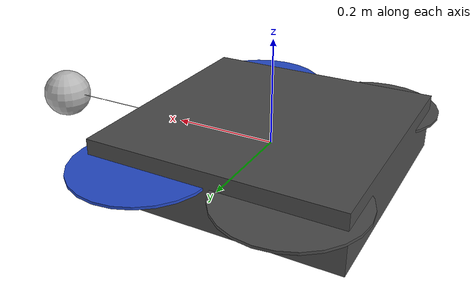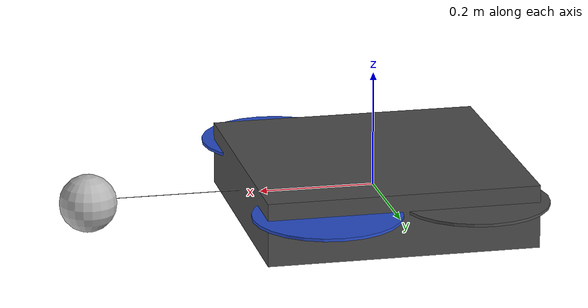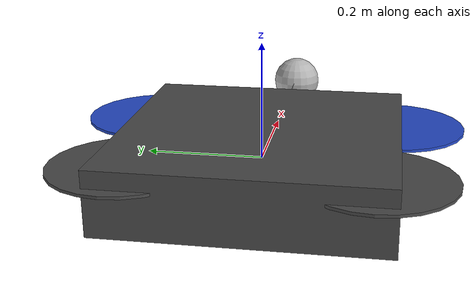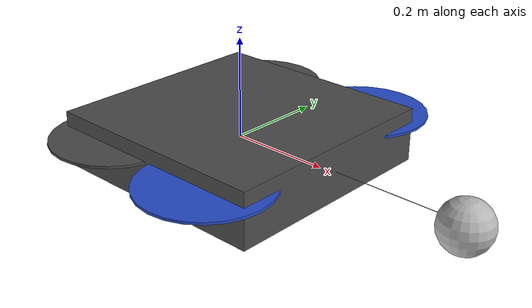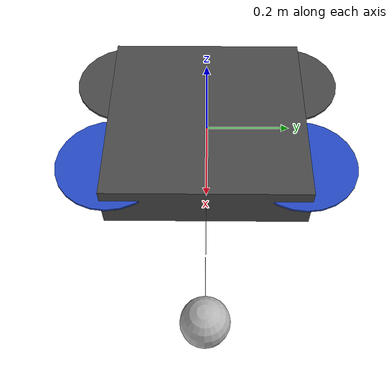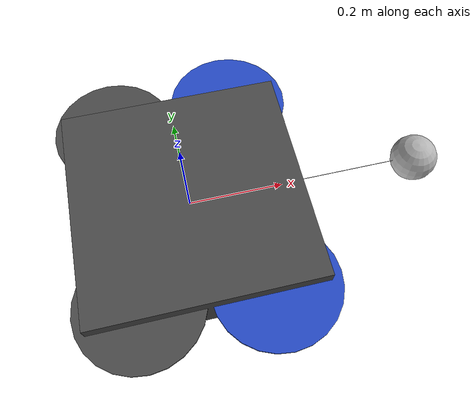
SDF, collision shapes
<?xml version="1.0" ?>
<sdf version='1.5'>
  <model name='iris_rplidar'>
        <static>false</static>
    <include>
      <uri>model://iris</uri>
    </include>

	<include>
	  <uri>model://payload</uri>
		<pose>0.25 0.0 0.0 0 0 0</pose>
   </include>
    <joint name="payload_link_drone_joint" type="revolute2">
      <parent>iris_rplidar::iris::base_link</parent>
      <child>iris_rplidar::payload::payload_link</child>
      <pose>-0.00 0.0 -0.25 0 0.0 0.0</pose>

      <axis>
        <xyz>1 0 0</xyz>
		<dynamics>
		<damping> 1.0 </damping>
		<spring_stiffness> 4.5 </spring_stiffness>
		</dynamics>
		<limit>
		   <lower>-0.01</lower>
		   <upper>0.01</upper>
		</limit>
      </axis>

      <axis2>
        <xyz>0 1 0</xyz>
		<dynamics>
		<damping> 1 </damping>
		<spring_stiffness> 0.45 </spring_stiffness>
		</dynamics>
      </axis2>

	 <physics>
	 <ode>
	 <provide_feedback>true</provide_feedback>
	 			<implicit_spring_damper>true</implicit_spring_damper>
	 </ode>
	 </physics>
	 <sensor name="force_torque" type="force_torque">
      <update_rate>200</update_rate>
	  <always_on>true</always_on>
     </sensor>

    </joint>
		<plugin name="ft_sensor" filename="libgazebo_ros_ft_sensor.so">
			  <always_on>true</always_on>
            <updateRate>200.0</updateRate>
            <topicName>/ft_sensor</topicName>
		            <jointName>payload_link_drone_joint</jointName>
        </plugin>

  </model>
</sdf>
<!-- vim: set noet fenc=utf-8 ff=unix sts=0 sw=4 ts=4 : -->

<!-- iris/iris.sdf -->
<sdf version='1.6'>
  <model name='iris'>
    <link name='base_link'>
      <pose frame=''>0 0 0 0 -0 0</pose>
      <inertial>
        <pose frame=''>0 0 0 0 -0 0</pose>
        <mass>1.5</mass>
        <inertia>
          <ixx>0.0347563</ixx>
          <ixy>0</ixy>
          <ixz>0</ixz>
          <iyy>0.0458929</iyy>
          <iyz>0</iyz>
          <izz>0.0977</izz>
        </inertia>
      </inertial>
      <collision name='base_link_inertia_collision'>
        <pose frame=''>0 0 0 0 -0 0</pose>
        <geometry>
          <box>
            <size>0.47 0.47 0.11</size>
          </box>
        </geometry>
        <surface>
          <contact>
            <ode>
              <min_depth>0.001</min_depth>
              <max_vel>0</max_vel>
            </ode>
          </contact>
          <friction>
            <ode/>
          </friction>
        </surface>
      </collision>
      <visual name='base_link_inertia_visual'>
        <pose frame=''>0 0 0 0 -0 0</pose>
        <geometry>
          <mesh>
            <scale>1 1 1</scale>
            <uri>model://rotors_description/meshes/iris.stl</uri>
          </mesh>
        </geometry>
        <material>
          <script>
            <name>Gazebo/DarkGrey</name>
            <uri>file://media/materials/scripts/gazebo.material</uri>
          </script>
        </material>
      </visual>
      <gravity>1</gravity>
      <velocity_decay/>
    </link>
    <link name='/imu_link'>
      <pose frame=''>0 0 0 0 -0 0</pose>
      <inertial>
        <pose frame=''>0 0 0 0 -0 0</pose>
        <mass>0.015</mass>
        <inertia>
          <ixx>1e-05</ixx>
          <ixy>0</ixy>
          <ixz>0</ixz>
          <iyy>1e-05</iyy>
          <iyz>0</iyz>
          <izz>1e-05</izz>
        </inertia>
      </inertial>
    </link>
    <joint name='/imu_joint' type='revolute'>
      <child>/imu_link</child>
      <parent>base_link</parent>
      <axis>
        <xyz>1 0 0</xyz>
        <limit>
          <lower>0</lower>
          <upper>0</upper>
          <effort>0</effort>
          <velocity>0</velocity>
        </limit>
        <dynamics>
          <spring_reference>0</spring_reference>
          <spring_stiffness>0</spring_stiffness>
        </dynamics>
        <use_parent_model_frame>1</use_parent_model_frame>
      </axis>
    </joint>
    <link name='rotor_0'>
      <pose frame=''>0.13 -0.22 0.023 0 -0 0</pose>
      <inertial>
        <pose frame=''>0 0 0 0 -0 0</pose>
        <mass>0.005</mass>
        <inertia>
          <ixx>9.75e-07</ixx>
          <ixy>0</ixy>
          <ixz>0</ixz>
          <iyy>0.000273104</iyy>
          <iyz>0</iyz>
          <izz>0.000274004</izz>
        </inertia>
      </inertial>
      <collision name='rotor_0_collision'>
        <pose frame=''>0 0 0 0 -0 0</pose>
        <geometry>
          <cylinder>
            <length>0.005</length>
            <radius>0.128</radius>
          </cylinder>
        </geometry>
        <surface>
          <contact>
            <ode/>
          </contact>
          <friction>
            <ode/>
          </friction>
        </surface>
      </collision>
      <visual name='rotor_0_visual'>
        <pose frame=''>0 0 0 0 -0 0</pose>
        <geometry>
          <mesh>
            <scale>1 1 1</scale>
            <uri>model://rotors_description/meshes/iris_prop_ccw.dae</uri>
          </mesh>
        </geometry>
        <material>
          <script>
            <name>Gazebo/Blue</name>
            <uri>file://media/materials/scripts/gazebo.material</uri>
          </script>
        </material>
      </visual>
      <gravity>1</gravity>
      <velocity_decay/>
    </link>
    <joint name='rotor_0_joint' type='revolute'>
      <child>rotor_0</child>
      <parent>base_link</parent>
      <axis>
        <xyz>0 0 1</xyz>
        <limit>
          <lower>-1e+16</lower>
          <upper>1e+16</upper>
        </limit>
        <dynamics>
          <spring_reference>0</spring_reference>
          <spring_stiffness>0</spring_stiffness>
        </dynamics>
        <use_parent_model_frame>1</use_parent_model_frame>
      </axis>
    </joint>
    <link name='rotor_1'>
      <pose frame=''>-0.13 0.2 0.023 0 -0 0</pose>
      <inertial>
        <pose frame=''>0 0 0 0 -0 0</pose>
        <mass>0.005</mass>
        <inertia>
          <ixx>9.75e-07</ixx>
          <ixy>0</ixy>
          <ixz>0</ixz>
          <iyy>0.000273104</iyy>
          <iyz>0</iyz>
          <izz>0.000274004</izz>
        </inertia>
      </inertial>
      <collision name='rotor_1_collision'>
        <pose frame=''>0 0 0 0 -0 0</pose>
        <geometry>
          <cylinder>
            <length>0.005</length>
            <radius>0.128</radius>
          </cylinder>
        </geometry>
        <surface>
          <contact>
            <ode/>
          </contact>
          <friction>
            <ode/>
          </friction>
        </surface>
      </collision>
      <visual name='rotor_1_visual'>
        <pose frame=''>0 0 0 0 -0 0</pose>
        <geometry>
          <mesh>
            <scale>1 1 1</scale>
            <uri>model://rotors_description/meshes/iris_prop_ccw.dae</uri>
          </mesh>
        </geometry>
        <material>
          <script>
            <name>Gazebo/DarkGrey</name>
            <uri>file://media/materials/scripts/gazebo.material</uri>
          </script>
        </material>
      </visual>
      <gravity>1</gravity>
      <velocity_decay/>
    </link>
    <joint name='rotor_1_joint' type='revolute'>
      <child>rotor_1</child>
      <parent>base_link</parent>
      <axis>
        <xyz>0 0 1</xyz>
        <limit>
          <lower>-1e+16</lower>
          <upper>1e+16</upper>
        </limit>
        <dynamics>
          <spring_reference>0</spring_reference>
          <spring_stiffness>0</spring_stiffness>
        </dynamics>
        <use_parent_model_frame>1</use_parent_model_frame>
      </axis>
    </joint>
    <link name='rotor_2'>
      <pose frame=''>0.13 0.22 0.023 0 -0 0</pose>
      <inertial>
        <pose frame=''>0 0 0 0 -0 0</pose>
        <mass>0.005</mass>
        <inertia>
          <ixx>9.75e-07</ixx>
          <ixy>0</ixy>
          <ixz>0</ixz>
          <iyy>0.000273104</iyy>
          <iyz>0</iyz>
          <izz>0.000274004</izz>
        </inertia>
      </inertial>
      <collision name='rotor_2_collision'>
        <pose frame=''>0 0 0 0 -0 0</pose>
        <geometry>
          <cylinder>
            <length>0.005</length>
            <radius>0.128</radius>
          </cylinder>
        </geometry>
        <surface>
          <contact>
            <ode/>
          </contact>
          <friction>
            <ode/>
          </friction>
        </surface>
      </collision>
      <visual name='rotor_2_visual'>
        <pose frame=''>0 0 0 0 -0 0</pose>
        <geometry>
          <mesh>
            <scale>1 1 1</scale>
            <uri>model://rotors_description/meshes/iris_prop_cw.dae</uri>
          </mesh>
        </geometry>
        <material>
          <script>
            <name>Gazebo/Blue</name>
            <uri>file://media/materials/scripts/gazebo.material</uri>
          </script>
        </material>
      </visual>
      <gravity>1</gravity>
      <velocity_decay/>
    </link>
    <joint name='rotor_2_joint' type='revolute'>
      <child>rotor_2</child>
      <parent>base_link</parent>
      <axis>
        <xyz>0 0 1</xyz>
        <limit>
          <lower>-1e+16</lower>
          <upper>1e+16</upper>
        </limit>
        <dynamics>
          <spring_reference>0</spring_reference>
          <spring_stiffness>0</spring_stiffness>
        </dynamics>
        <use_parent_model_frame>1</use_parent_model_frame>
      </axis>
    </joint>
    <link name='rotor_3'>
      <pose frame=''>-0.13 -0.2 0.023 0 -0 0</pose>
      <inertial>
        <pose frame=''>0 0 0 0 -0 0</pose>
        <mass>0.005</mass>
        <inertia>
          <ixx>9.75e-07</ixx>
          <ixy>0</ixy>
          <ixz>0</ixz>
          <iyy>0.000273104</iyy>
          <iyz>0</iyz>
          <izz>0.000274004</izz>
        </inertia>
      </inertial>
      <collision name='rotor_3_collision'>
        <pose frame=''>0 0 0 0 -0 0</pose>
        <geometry>
          <cylinder>
            <length>0.005</length>
            <radius>0.128</radius>
          </cylinder>
        </geometry>
        <surface>
          <contact>
            <ode/>
          </contact>
          <friction>
            <ode/>
          </friction>
        </surface>
      </collision>
      <visual name='rotor_3_visual'>
        <pose frame=''>0 0 0 0 -0 0</pose>
        <geometry>
          <mesh>
            <scale>1 1 1</scale>
            <uri>model://rotors_description/meshes/iris_prop_cw.dae</uri>
          </mesh>
        </geometry>
        <material>
          <script>
            <name>Gazebo/DarkGrey</name>
            <uri>file://media/materials/scripts/gazebo.material</uri>
          </script>
        </material>
      </visual>
      <gravity>1</gravity>
      <velocity_decay/>
    </link>
    <joint name='rotor_3_joint' type='revolute'>
      <child>rotor_3</child>
      <parent>base_link</parent>
      <axis>
        <xyz>0 0 1</xyz>
        <limit>
          <lower>-1e+16</lower>
          <upper>1e+16</upper>
        </limit>
        <dynamics>
          <spring_reference>0</spring_reference>
          <spring_stiffness>0</spring_stiffness>
        </dynamics>
        <use_parent_model_frame>1</use_parent_model_frame>
      </axis>
    </joint>
    <plugin name='rosbag' filename='libgazebo_multirotor_base_plugin.so'>
      <robotNamespace/>
      <linkName>base_link</linkName>
      <rotorVelocitySlowdownSim>10</rotorVelocitySlowdownSim>
    </plugin>
    <plugin name='front_right_motor_model' filename='libgazebo_motor_model.so'>
      <robotNamespace/>
      <jointName>rotor_0_joint</jointName>
      <linkName>rotor_0</linkName>
      <turningDirection>ccw</turningDirection>
      <timeConstantUp>0.0125</timeConstantUp>
      <timeConstantDown>0.025</timeConstantDown>
      <maxRotVelocity>1100</maxRotVelocity>
      <motorConstant>8.54858e-06</motorConstant>
      <momentConstant>0.06</momentConstant>
      <commandSubTopic>/gazebo/command/motor_speed</commandSubTopic>
      <motorNumber>0</motorNumber>
      <rotorDragCoefficient>0.000806428</rotorDragCoefficient>
      <rollingMomentCoefficient>1e-06</rollingMomentCoefficient>
      <motorSpeedPubTopic>/motor_speed/0</motorSpeedPubTopic>
      <rotorVelocitySlowdownSim>10</rotorVelocitySlowdownSim>
    </plugin>
    <plugin name='back_left_motor_model' filename='libgazebo_motor_model.so'>
      <robotNamespace/>
      <jointName>rotor_1_joint</jointName>
      <linkName>rotor_1</linkName>
      <turningDirection>ccw</turningDirection>
      <timeConstantUp>0.0125</timeConstantUp>
      <timeConstantDown>0.025</timeConstantDown>
      <maxRotVelocity>1100</maxRotVelocity>
      <motorConstant>8.54858e-06</motorConstant>
      <momentConstant>0.06</momentConstant>
      <commandSubTopic>/gazebo/command/motor_speed</commandSubTopic>
      <motorNumber>1</motorNumber>
      <rotorDragCoefficient>0.000806428</rotorDragCoefficient>
      <rollingMomentCoefficient>1e-06</rollingMomentCoefficient>
      <motorSpeedPubTopic>/motor_speed/1</motorSpeedPubTopic>
      <rotorVelocitySlowdownSim>10</rotorVelocitySlowdownSim>
    </plugin>
    <plugin name='front_left_motor_model' filename='libgazebo_motor_model.so'>
      <robotNamespace/>
      <jointName>rotor_2_joint</jointName>
      <linkName>rotor_2</linkName>
      <turningDirection>cw</turningDirection>
      <timeConstantUp>0.0125</timeConstantUp>
      <timeConstantDown>0.025</timeConstantDown>
      <maxRotVelocity>1100</maxRotVelocity>
      <motorConstant>8.54858e-06</motorConstant>
      <momentConstant>0.06</momentConstant>
      <commandSubTopic>/gazebo/command/motor_speed</commandSubTopic>
      <motorNumber>2</motorNumber>
      <rotorDragCoefficient>0.000806428</rotorDragCoefficient>
      <rollingMomentCoefficient>1e-06</rollingMomentCoefficient>
      <motorSpeedPubTopic>/motor_speed/2</motorSpeedPubTopic>
      <rotorVelocitySlowdownSim>10</rotorVelocitySlowdownSim>
    </plugin>
    <plugin name='back_right_motor_model' filename='libgazebo_motor_model.so'>
      <robotNamespace/>
      <jointName>rotor_3_joint</jointName>
      <linkName>rotor_3</linkName>
      <turningDirection>cw</turningDirection>
      <timeConstantUp>0.0125</timeConstantUp>
      <timeConstantDown>0.025</timeConstantDown>
      <maxRotVelocity>1100</maxRotVelocity>
      <motorConstant>8.54858e-06</motorConstant>
      <momentConstant>0.06</momentConstant>
      <commandSubTopic>/gazebo/command/motor_speed</commandSubTopic>
      <motorNumber>3</motorNumber>
      <rotorDragCoefficient>0.000806428</rotorDragCoefficient>
      <rollingMomentCoefficient>1e-06</rollingMomentCoefficient>
      <motorSpeedPubTopic>/motor_speed/3</motorSpeedPubTopic>
      <rotorVelocitySlowdownSim>10</rotorVelocitySlowdownSim>
    </plugin>
    <plugin name='gps_plugin' filename='libgazebo_gps_plugin.so'>
      <robotNamespace/>
      <gpsNoise>true</gpsNoise>
    </plugin>
    <plugin name='mavlink_interface' filename='libgazebo_mavlink_interface.so'>
      <robotNamespace/>
      <imuSubTopic>/imu</imuSubTopic>
      <gpsSubTopic>/gps</gpsSubTopic>
      <mavlink_addr>INADDR_ANY</mavlink_addr>
      <mavlink_udp_port>14560</mavlink_udp_port>
      <mavlink_tcp_port>4560</mavlink_tcp_port>
      <serialEnabled>false</serialEnabled>
      <serialDevice>/dev/ttyACM0</serialDevice>
      <baudRate>921600</baudRate>
      <qgc_addr>INADDR_ANY</qgc_addr>
      <qgc_udp_port>14550</qgc_udp_port>
      <hil_mode>false</hil_mode>
      <hil_state_level>false</hil_state_level>
      <vehicle_is_tailsitter>false</vehicle_is_tailsitter>
      <send_vision_estimation>true</send_vision_estimation>
      <send_odometry>false</send_odometry>
      <enable_lockstep>true</enable_lockstep>
      <use_tcp>true</use_tcp>
      <motorSpeedCommandPubTopic>/gazebo/command/motor_speed</motorSpeedCommandPubTopic>
      <control_channels>
        <channel name='rotor1'>
          <input_index>0</input_index>
          <input_offset>0</input_offset>
          <input_scaling>1000</input_scaling>
          <zero_position_disarmed>0</zero_position_disarmed>
          <zero_position_armed>100</zero_position_armed>
          <joint_control_type>velocity</joint_control_type>
        </channel>
        <channel name='rotor2'>
          <input_index>1</input_index>
          <input_offset>0</input_offset>
          <input_scaling>1000</input_scaling>
          <zero_position_disarmed>0</zero_position_disarmed>
          <zero_position_armed>100</zero_position_armed>
          <joint_control_type>velocity</joint_control_type>
        </channel>
        <channel name='rotor3'>
          <input_index>2</input_index>
          <input_offset>0</input_offset>
          <input_scaling>1000</input_scaling>
          <zero_position_disarmed>0</zero_position_disarmed>
          <zero_position_armed>100</zero_position_armed>
          <joint_control_type>velocity</joint_control_type>
        </channel>
        <channel name='rotor4'>
          <input_index>3</input_index>
          <input_offset>0</input_offset>
          <input_scaling>1000</input_scaling>
          <zero_position_disarmed>0</zero_position_disarmed>
          <zero_position_armed>100</zero_position_armed>
          <joint_control_type>velocity</joint_control_type>
        </channel>
        <channel name='rotor5'>
          <input_index>4</input_index>
          <input_offset>1</input_offset>
          <input_scaling>324.6</input_scaling>
          <zero_position_disarmed>0</zero_position_disarmed>
          <zero_position_armed>0</zero_position_armed>
          <joint_control_type>velocity</joint_control_type>
          <joint_control_pid>
            <p>0.1</p>
            <i>0</i>
            <d>0</d>
            <iMax>0.0</iMax>
            <iMin>0.0</iMin>
            <cmdMax>2</cmdMax>
            <cmdMin>-2</cmdMin>
          </joint_control_pid>
          <joint_name>zephyr_delta_wing::propeller_joint</joint_name>
        </channel>
        <channel name='rotor6'>
          <input_index>5</input_index>
          <input_offset>0</input_offset>
          <input_scaling>0.524</input_scaling>
          <zero_position_disarmed>0</zero_position_disarmed>
          <zero_position_armed>0</zero_position_armed>
          <joint_control_type>position</joint_control_type>
          <joint_name>zephyr_delta_wing::flap_left_joint</joint_name>
          <joint_control_pid>
            <p>10.0</p>
            <i>0</i>
            <d>0</d>
            <iMax>0</iMax>
            <iMin>0</iMin>
            <cmdMax>20</cmdMax>
            <cmdMin>-20</cmdMin>
          </joint_control_pid>
        </channel>
        <channel name='rotor7'>
          <input_index>6</input_index>
          <input_offset>0</input_offset>
          <input_scaling>0.524</input_scaling>
          <zero_position_disarmed>0</zero_position_disarmed>
          <zero_position_armed>0</zero_position_armed>
          <joint_control_type>position</joint_control_type>
          <joint_name>zephyr_delta_wing::flap_right_joint</joint_name>
          <joint_control_pid>
            <p>10.0</p>
            <i>0</i>
            <d>0</d>
            <iMax>0</iMax>
            <iMin>0</iMin>
            <cmdMax>20</cmdMax>
            <cmdMin>-20</cmdMin>
          </joint_control_pid>
        </channel>
        <channel name='rotor8'>
          <input_index>7</input_index>
          <input_offset>0</input_offset>
          <input_scaling>0.524</input_scaling>
          <zero_position_disarmed>0</zero_position_disarmed>
          <zero_position_armed>0</zero_position_armed>
          <joint_control_type>position</joint_control_type>
        </channel>
      </control_channels>
    </plugin>
    <static>0</static>
    <plugin name='rotors_gazebo_imu_plugin' filename='libgazebo_imu_plugin.so'>
      <robotNamespace/>
      <linkName>/imu_link</linkName>
      <imuTopic>/imu</imuTopic>
      <gyroscopeNoiseDensity>0.0003394</gyroscopeNoiseDensity>
      <gyroscopeRandomWalk>3.8785e-05</gyroscopeRandomWalk>
      <gyroscopeBiasCorrelationTime>1000.0</gyroscopeBiasCorrelationTime>
      <gyroscopeTurnOnBiasSigma>0.0087</gyroscopeTurnOnBiasSigma>
      <accelerometerNoiseDensity>0.004</accelerometerNoiseDensity>
      <accelerometerRandomWalk>0.006</accelerometerRandomWalk>
      <accelerometerBiasCorrelationTime>300.0</accelerometerBiasCorrelationTime>
      <accelerometerTurnOnBiasSigma>0.196</accelerometerTurnOnBiasSigma>
    </plugin>
  </model>
</sdf>

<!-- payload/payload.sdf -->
<sdf version='1.5'>
  <model name="payload">
        <static>true</static>

	      <link name="payload_link">
        <pose>0.0 0.0 0.005 0 1.57 0</pose>
	<gravity>1</gravity>
		 <inertial>
          <inertia>
            <ixx>0.005</ixx>
            <ixy>0</ixy>
            <ixz>0</ixz>
            <iyy>0.005</iyy>
            <iyz>0</iyz>
            <izz>0.00001</izz>
          </inertia>
          <mass>0.03</mass>
        </inertial>
        <collision name="collision_payload_link">
          <geometry>
            <cylinder>
              <radius>0.0005</radius>
              <length>0.5</length>
            </cylinder>
          </geometry>
	  <surface>
	    <contact>
		<collide_without_contact>false</collide_without_contact>
		<ode>
		  <kp>0.05</kp>
		  <kd>0.05</kd>
		</ode>
	    </contact>
	    <friction>
		<torsional>
		  <coefficient>0.1</coefficient>
		</torsional>
		<ode>
		  <mu>0.1</mu>
		</ode>
	    </friction>
	  </surface>
        </collision>
        <visual name="visual_payload_link">
          <geometry>
            <cylinder>
              <radius>0.005</radius>
              <length>0.5</length>
            </cylinder>
          </geometry>
        </visual>
      </link>

      <link name="payload">
        <pose>0.25 0.0 0.0 0 0.0 0.0</pose>
	<gravity>1</gravity>
	<sensor type="imu" name="payload_imu">
		<always_on>true</always_on>
		<update_rate>200</update_rate>
	</sensor>

		 <inertial>
          <inertia>
            <ixx>0.15</ixx>
            <ixy>0</ixy>
            <ixz>0</ixz>
            <iyy>0.15</iyy>
            <iyz>0</iyz>
            <izz>0.000075</izz>
          </inertia>
          <mass>0.6</mass>
        </inertial>
        <collision name='caster_collision'>
            <geometry>
              <sphere>
              <radius>.05</radius>
            </sphere>
          </geometry>

          <surface>
            <friction>
              <ode>
                <mu>0</mu>
                <mu2>0</mu2>
                <slip1>0.0</slip1>
                <slip2>0.0</slip2>
              </ode>
            </friction>
          </surface>
        </collision>

        <visual name='caster_visual'>
          <geometry>
            <sphere>
              <radius>.05</radius>
            </sphere>
          </geometry>
        </visual>
      </link>
	<plugin name="imu_plugin_payload" filename="libgazebo_ros_imu.so">
      <alwaysOn>true</alwaysOn>
      <bodyName>payload</bodyName>
      <topicName>/sim_payload_imu</topicName>
      <serviceName>imu_service</serviceName>
      <gaussianNoise>0.0</gaussianNoise>
      <updateRate>200.0</updateRate>
    </plugin>

    <joint name="payload_link_joint" type="fixed">
      <parent>payload_link</parent>
      <child>payload</child>
      <pose>0.25 0.0 0.0 0 0.0 0.0</pose>
    </joint>

  </model>
</sdf>
